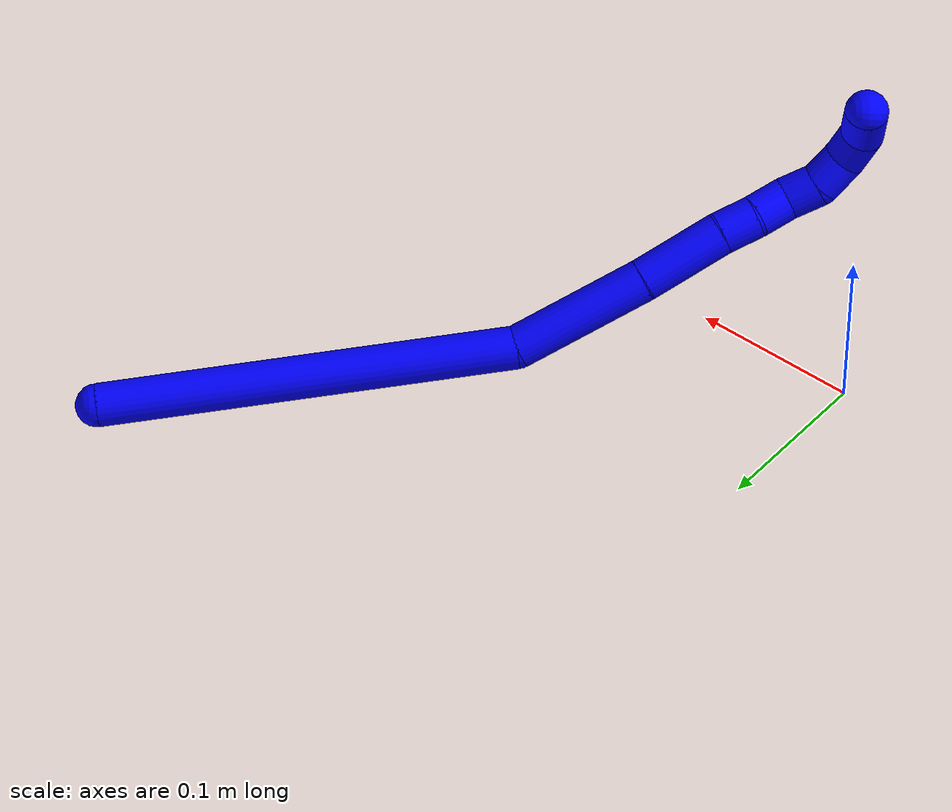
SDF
<sdf version="1.7">
 <world name="default">
  <plugin name="TubeGeneratorPlugin" filename="libtube_generator_plugin.so"/>
  <model name="photoneo_s_sensor">
   <static>1</static>
   <pose>0 0 2 1.57079 1.57079 3.14159</pose>
   <link name="link">
    <inertial><mass>0.1</mass></inertial>
    <sensor name="sensor" type="depth">
     <update_rate>30</update_rate>
     <camera>
      <horizontal_fov>1.22</horizontal_fov>
      <image><width>1920</width><height>1200</height><format>B8G8R8</format></image>
      <clip><near>0.1</near><far>4</far></clip>
      <depth_camera><output>points</output></depth_camera>
     </camera>
     <plugin name="camera_plugin" filename="libgazebo_ros_depth_camera.so">
      <baseline>0.2</baseline>
      <alwaysOn>1</alwaysOn>
      <updateRate>0.0</updateRate>
      <cameraName>camera_ir</cameraName>
      <imageTopicName>/camera/color/image_raw</imageTopicName>
      <cameraInfoTopicName>/camera/color/camera_info</cameraInfoTopicName>
      <depthImageTopicName>/camera/depth/image_raw</depthImageTopicName>
      <depthImageCameraInfoTopicName>/camera/depth/camera_info</depthImageCameraInfoTopicName>
      <pointCloudTopicName>/camera/depth/points</pointCloudTopicName>
      <frameName>fr_optical</frameName>
      <pointCloudCutoff>0.1</pointCloudCutoff>
      <pointCloudCutoffMax>2.0</pointCloudCutoffMax>
      <distortionK1>0</distortionK1>
      <distortionK2>0</distortionK2>
      <distortionK3>0</distortionK3>
      <distortionT1>0</distortionT1>
      <distortionT2>0</distortionT2>
      <CxPrime>0</CxPrime>
      <Cx>0</Cx>
      <Cy>0</Cy>
      <focalLength>0</focalLength>
      <hackBaseline>0</hackBaseline>
     </plugin>
    </sensor>
   </link>
  </model>
  <gravity>0 0 -9.8</gravity>
  <magnetic_field>6e-06 2.3e-05 -4.2e-05</magnetic_field>
  <atmosphere type="adiabatic"/>
  <physics name="default_physics" default="0" type="ode">
   <max_step_size>0.003</max_step_size>
   <real_time_factor>1</real_time_factor>
   <real_time_update_rate>1000</real_time_update_rate>
   <max_contacts>10000</max_contacts>
   <ode>
    <solver>
     <type>quick</type>
     <iters>100</iters>
     <sor>1.3</sor>
     <use_dynamic_moi_rescaling>0</use_dynamic_moi_rescaling>
    </solver>
    <constraints>
     <contact_max_correcting_vel>0</contact_max_correcting_vel>
     <contact_surface_layer>0.001</contact_surface_layer>
     <cfm>0</cfm>
     <erp>0.2</erp>
    </constraints>
   </ode>
  </physics>
  <scene><ambient>0.4 0.4 0.4 1</ambient><background>0.7 0.7 0.7 1</background><shadows>0</shadows></scene>
  <audio><device>default</device></audio>
  <spherical_coordinates>
   <surface_model>EARTH_WGS84</surface_model>
   <latitude_deg>0</latitude_deg>
   <longitude_deg>0</longitude_deg>
   <elevation>0</elevation>
   <heading_deg>0</heading_deg>
  </spherical_coordinates>
  <model name="bin">
   <static>1</static>
   <link name="bottom">
    <collision name="collision-bottom">
     <pose>0 0 -0.01 0 -0 0</pose>
     <geometry><box><size>0.8 0.6 0.02</size></box></geometry>
     <surface>
      <friction><ode><mu>100</mu><mu2>100</mu2></ode></friction>
      <contact><collide_bitmask>65535</collide_bitmask></contact>
     </surface>
    </collision>
   </link>
   <link name="west_wall">
    <collision name="collision-west_wall">
     <pose>-0.41 0 0.1 0 -0 0</pose>
     <geometry><box><size>0.02 0.6 0.2</size></box></geometry>
     <surface>
      <friction><ode><mu>100</mu><mu2>100</mu2></ode></friction>
      <contact><collide_bitmask>65535</collide_bitmask></contact>
     </surface>
    </collision>
   </link>
   <link name="east_wall">
    <collision name="collision-east_wall">
     <pose>0.41 0 0.1 0 -0 0</pose>
     <geometry><box><size>0.02 0.6 0.2</size></box></geometry>
     <surface>
      <friction><ode><mu>100</mu><mu2>100</mu2></ode></friction>
      <contact><collide_bitmask>65535</collide_bitmask></contact>
     </surface>
    </collision>
   </link>
   <link name="south_wall">
    <collision name="collision-south_wall">
     <pose>0 -0.31 0.1 0 -0 0</pose>
     <geometry><box><size>0.8 0.02 0.2</size></box></geometry>
     <surface>
      <friction><ode><mu>100</mu><mu2>100</mu2></ode></friction>
      <contact><collide_bitmask>65535</collide_bitmask></contact>
     </surface>
    </collision>
   </link>
   <link name="north_wall">
    <collision name="collision-north_wall">
     <pose>0 0.31 0.1 0 -0 0</pose>
     <geometry><box><size>0.8 0.02 0.2</size></box></geometry>
     <surface>
      <friction><ode><mu>100</mu><mu2>100</mu2></ode></friction>
      <contact><collide_bitmask>65535</collide_bitmask></contact>
     </surface>
    </collision>
   </link>
  </model>
  <model name="1">
   <static>0</static>
   <link name="1">
    <collision name="collision-cylinder-e_1_1_4">
     <pose>-0.041339 -0.02277 -0.110749 2.93881 -0.350519 -2.09861</pose>
     <geometry><cylinder><radius>0.0125</radius><length>0.240771</length></cylinder></geometry>
     <surface>
      <friction><ode><mu>1.16</mu><mu2>1.16</mu2><slip1>0</slip1><slip2>0</slip2></ode></friction>
      <contact><ode><kp>1e+06</kp><kd>1</kd><max_vel>0</max_vel><min_depth>0.001</min_depth></ode></contact>
     </surface>
    </collision>
    <visual name="visual-cylinder-e_1_1_4">
     <pose>-0.041339 -0.02277 -0.110749 2.93881 -0.350519 -2.09861</pose>
     <geometry><cylinder><radius>0.0125</radius><length>0.240771</length></cylinder></geometry>
     <material><ambient>0 0 1 1</ambient></material>
    </visual>
    <collision name="collision-cylinder-e_2_4_5">
     <pose>-0.095082 -0.066624 -0.253937 2.56527 -0.310273 -0.970994</pose>
     <geometry><cylinder><radius>0.0125</radius><length>0.081257</length></cylinder></geometry>
     <surface>
      <friction><ode><mu>1.16</mu><mu2>1.16</mu2><slip1>0</slip1><slip2>0</slip2></ode></friction>
      <contact><ode><kp>1e+06</kp><kd>1</kd><max_vel>0</max_vel><min_depth>0.001</min_depth></ode></contact>
     </surface>
    </collision>
    <visual name="visual-cylinder-e_2_4_5">
     <pose>-0.095082 -0.066624 -0.253937 2.56527 -0.310273 -0.970994</pose>
     <geometry><cylinder><radius>0.0125</radius><length>0.081257</length></cylinder></geometry>
     <material><ambient>0 0 1 1</ambient></material>
    </visual>
    <collision name="collision-cylinder-e_3_5_6">
     <pose>-0.113946 -0.102026 -0.306649 2.52665 -0.2546 -0.7663</pose>
     <geometry><cylinder><radius>0.0125</radius><length>0.051293</length></cylinder></geometry>
     <surface>
      <friction><ode><mu>1.16</mu><mu2>1.16</mu2><slip1>0</slip1><slip2>0</slip2></ode></friction>
      <contact><ode><kp>1e+06</kp><kd>1</kd><max_vel>0</max_vel><min_depth>0.001</min_depth></ode></contact>
     </surface>
    </collision>
    <visual name="visual-cylinder-e_3_5_6">
     <pose>-0.113946 -0.102026 -0.306649 2.52665 -0.2546 -0.7663</pose>
     <geometry><cylinder><radius>0.0125</radius><length>0.051293</length></cylinder></geometry>
     <material><ambient>0 0 1 1</ambient></material>
    </visual>
    <collision name="collision-cylinder-e_4_6_7">
     <pose>-0.122833 -0.12146 -0.336085 2.63244 -0.227401 -0.827045</pose>
     <geometry><cylinder><radius>0.0125</radius><length>0.021544</length></cylinder></geometry>
     <surface>
      <friction><ode><mu>1.16</mu><mu2>1.16</mu2><slip1>0</slip1><slip2>0</slip2></ode></friction>
      <contact><ode><kp>1e+06</kp><kd>1</kd><max_vel>0</max_vel><min_depth>0.001</min_depth></ode></contact>
     </surface>
    </collision>
    <visual name="visual-cylinder-e_4_6_7">
     <pose>-0.122833 -0.12146 -0.336085 2.63244 -0.227401 -0.827045</pose>
     <geometry><cylinder><radius>0.0125</radius><length>0.021544</length></cylinder></geometry>
     <material><ambient>0 0 1 1</ambient></material>
    </visual>
    <collision name="collision-cylinder-e_5_7_8">
     <pose>-0.126001 -0.132074 -0.354495 2.60511 -0.068589 -0.24835</pose>
     <geometry><cylinder><radius>0.0125</radius><length>0.021565</length></cylinder></geometry>
     <surface>
      <friction><ode><mu>1.16</mu><mu2>1.16</mu2><slip1>0</slip1><slip2>0</slip2></ode></friction>
      <contact><ode><kp>1e+06</kp><kd>1</kd><max_vel>0</max_vel><min_depth>0.001</min_depth></ode></contact>
     </surface>
    </collision>
    <visual name="visual-cylinder-e_5_7_8">
     <pose>-0.126001 -0.132074 -0.354495 2.60511 -0.068589 -0.24835</pose>
     <geometry><cylinder><radius>0.0125</radius><length>0.021565</length></cylinder></geometry>
     <material><ambient>0 0 1 1</ambient></material>
    </visual>
    <collision name="collision-cylinder-e_6_8_9">
     <pose>-0.131717 -0.142359 -0.371388 2.58239 -0.504104 -1.46223</pose>
     <geometry><cylinder><radius>0.0125</radius><length>0.020608</length></cylinder></geometry>
     <surface>
      <friction><ode><mu>1.16</mu><mu2>1.16</mu2><slip1>0</slip1><slip2>0</slip2></ode></friction>
      <contact><ode><kp>1e+06</kp><kd>1</kd><max_vel>0</max_vel><min_depth>0.001</min_depth></ode></contact>
     </surface>
    </collision>
    <visual name="visual-cylinder-e_6_8_9">
     <pose>-0.131717 -0.142359 -0.371388 2.58239 -0.504104 -1.46223</pose>
     <geometry><cylinder><radius>0.0125</radius><length>0.020608</length></cylinder></geometry>
     <material><ambient>0 0 1 1</ambient></material>
    </visual>
    <collision name="collision-cylinder-e_7_9_10">
     <pose>-0.140739 -0.155178 -0.38452 2.16982 -0.394088 -0.722821</pose>
     <geometry><cylinder><radius>0.0125</radius><length>0.021068</length></cylinder></geometry>
     <surface>
      <friction><ode><mu>1.16</mu><mu2>1.16</mu2><slip1>0</slip1><slip2>0</slip2></ode></friction>
      <contact><ode><kp>1e+06</kp><kd>1</kd><max_vel>0</max_vel><min_depth>0.001</min_depth></ode></contact>
     </surface>
    </collision>
    <visual name="visual-cylinder-e_7_9_10">
     <pose>-0.140739 -0.155178 -0.38452 2.16982 -0.394088 -0.722821</pose>
     <geometry><cylinder><radius>0.0125</radius><length>0.021068</length></cylinder></geometry>
     <material><ambient>0 0 1 1</ambient></material>
    </visual>
    <collision name="collision-cylinder-e_8_10_11">
     <pose>-0.151458 -0.170587 -0.391668 1.79259 -0.723212 -0.883678</pose>
     <geometry><cylinder><radius>0.0125</radius><length>0.020172</length></cylinder></geometry>
     <surface>
      <friction><ode><mu>1.16</mu><mu2>1.16</mu2><slip1>0</slip1><slip2>0</slip2></ode></friction>
      <contact><ode><kp>1e+06</kp><kd>1</kd><max_vel>0</max_vel><min_depth>0.001</min_depth></ode></contact>
     </surface>
    </collision>
    <visual name="visual-cylinder-e_8_10_11">
     <pose>-0.151458 -0.170587 -0.391668 1.79259 -0.723212 -0.883678</pose>
     <geometry><cylinder><radius>0.0125</radius><length>0.020172</length></cylinder></geometry>
     <material><ambient>0 0 1 1</ambient></material>
    </visual>
    <collision name="collision-cylinder-e_9_11_2">
     <pose>-0.165962 -0.184912 -0.390437 1.17617 -0.805024 -0.553221</pose>
     <geometry><cylinder><radius>0.0125</radius><length>0.021723</length></cylinder></geometry>
     <surface>
      <friction><ode><mu>1.16</mu><mu2>1.16</mu2><slip1>0</slip1><slip2>0</slip2></ode></friction>
      <contact><ode><kp>1e+06</kp><kd>1</kd><max_vel>0</max_vel><min_depth>0.001</min_depth></ode></contact>
     </surface>
    </collision>
    <visual name="visual-cylinder-e_9_11_2">
     <pose>-0.165962 -0.184912 -0.390437 1.17617 -0.805024 -0.553221</pose>
     <geometry><cylinder><radius>0.0125</radius><length>0.021723</length></cylinder></geometry>
     <material><ambient>0 0 1 1</ambient></material>
    </visual>
    <collision name="collision-sphere-2">
     <pose>-0.173792 -0.191862 -0.387543 0 -0 0</pose>
     <geometry><sphere><radius>0.0125</radius></sphere></geometry>
     <surface>
      <friction><ode><mu>1.16</mu><mu2>1.16</mu2><slip1>0</slip1><slip2>0</slip2></ode></friction>
      <contact><ode><kp>1e+06</kp><kd>1</kd><max_vel>0</max_vel><min_depth>0.001</min_depth></ode></contact>
     </surface>
    </collision>
    <visual name="visual-sphere-2">
     <pose>-0.173792 -0.191862 -0.387543 0 -0 0</pose>
     <geometry><sphere><radius>0.0125</radius></sphere></geometry>
     <material><ambient>0 0 1 1</ambient></material>
    </visual>
    <collision name="collision-sphere-11">
     <pose>-0.158133 -0.177963 -0.393331 0 -0 0</pose>
     <geometry><sphere><radius>0.0125</radius></sphere></geometry>
     <surface>
      <friction><ode><mu>1.16</mu><mu2>1.16</mu2><slip1>0</slip1><slip2>0</slip2></ode></friction>
      <contact><ode><kp>1e+06</kp><kd>1</kd><max_vel>0</max_vel><min_depth>0.001</min_depth></ode></contact>
     </surface>
    </collision>
    <visual name="visual-sphere-11">
     <pose>-0.158133 -0.177963 -0.393331 0 -0 0</pose>
     <geometry><sphere><radius>0.0125</radius></sphere></geometry>
     <material><ambient>0 0 1 1</ambient></material>
    </visual>
    <collision name="collision-sphere-10">
     <pose>-0.144783 -0.163211 -0.390005 0 -0 0</pose>
     <geometry><sphere><radius>0.0125</radius></sphere></geometry>
     <surface>
      <friction><ode><mu>1.16</mu><mu2>1.16</mu2><slip1>0</slip1><slip2>0</slip2></ode></friction>
      <contact><ode><kp>1e+06</kp><kd>1</kd><max_vel>0</max_vel><min_depth>0.001</min_depth></ode></contact>
     </surface>
    </collision>
    <visual name="visual-sphere-10">
     <pose>-0.144783 -0.163211 -0.390005 0 -0 0</pose>
     <geometry><sphere><radius>0.0125</radius></sphere></geometry>
     <material><ambient>0 0 1 1</ambient></material>
    </visual>
    <collision name="collision-sphere-9">
     <pose>-0.136694 -0.147145 -0.379036 0 -0 0</pose>
     <geometry><sphere><radius>0.0125</radius></sphere></geometry>
     <surface>
      <friction><ode><mu>1.16</mu><mu2>1.16</mu2><slip1>0</slip1><slip2>0</slip2></ode></friction>
      <contact><ode><kp>1e+06</kp><kd>1</kd><max_vel>0</max_vel><min_depth>0.001</min_depth></ode></contact>
     </surface>
    </collision>
    <visual name="visual-sphere-9">
     <pose>-0.136694 -0.147145 -0.379036 0 -0 0</pose>
     <geometry><sphere><radius>0.0125</radius></sphere></geometry>
     <material><ambient>0 0 1 1</ambient></material>
    </visual>
    <collision name="collision-sphere-4">
     <pose>-0.082677 -0.045541 -0.221498 0 -0 0</pose>
     <geometry><sphere><radius>0.0125</radius></sphere></geometry>
     <surface>
      <friction><ode><mu>1.16</mu><mu2>1.16</mu2><slip1>0</slip1><slip2>0</slip2></ode></friction>
      <contact><ode><kp>1e+06</kp><kd>1</kd><max_vel>0</max_vel><min_depth>0.001</min_depth></ode></contact>
     </surface>
    </collision>
    <visual name="visual-sphere-4">
     <pose>-0.082677 -0.045541 -0.221498 0 -0 0</pose>
     <geometry><sphere><radius>0.0125</radius></sphere></geometry>
     <material><ambient>0 0 1 1</ambient></material>
    </visual>
    <collision name="collision-sphere-1">
     <geometry><sphere><radius>0.0125</radius></sphere></geometry>
     <surface>
      <friction><ode><mu>1.16</mu><mu2>1.16</mu2><slip1>0</slip1><slip2>0</slip2></ode></friction>
      <contact><ode><kp>1e+06</kp><kd>1</kd><max_vel>0</max_vel><min_depth>0.001</min_depth></ode></contact>
     </surface>
    </collision>
    <visual name="visual-sphere-1">
     <geometry><sphere><radius>0.0125</radius></sphere></geometry>
     <material><ambient>0 0 1 1</ambient></material>
    </visual>
    <collision name="collision-sphere-8">
     <pose>-0.12674 -0.137572 -0.363741 0 -0 0</pose>
     <geometry><sphere><radius>0.0125</radius></sphere></geometry>
     <surface>
      <friction><ode><mu>1.16</mu><mu2>1.16</mu2><slip1>0</slip1><slip2>0</slip2></ode></friction>
      <contact><ode><kp>1e+06</kp><kd>1</kd><max_vel>0</max_vel><min_depth>0.001</min_depth></ode></contact>
     </surface>
    </collision>
    <visual name="visual-sphere-8">
     <pose>-0.12674 -0.137572 -0.363741 0 -0 0</pose>
     <geometry><sphere><radius>0.0125</radius></sphere></geometry>
     <material><ambient>0 0 1 1</ambient></material>
    </visual>
    <collision name="collision-sphere-5">
     <pose>-0.107486 -0.087707 -0.286376 0 -0 0</pose>
     <geometry><sphere><radius>0.0125</radius></sphere></geometry>
     <surface>
      <friction><ode><mu>1.16</mu><mu2>1.16</mu2><slip1>0</slip1><slip2>0</slip2></ode></friction>
      <contact><ode><kp>1e+06</kp><kd>1</kd><max_vel>0</max_vel><min_depth>0.001</min_depth></ode></contact>
     </surface>
    </collision>
    <visual name="visual-sphere-5">
     <pose>-0.107486 -0.087707 -0.286376 0 -0 0</pose>
     <geometry><sphere><radius>0.0125</radius></sphere></geometry>
     <material><ambient>0 0 1 1</ambient></material>
    </visual>
    <collision name="collision-sphere-6">
     <pose>-0.120405 -0.116345 -0.326922 0 -0 0</pose>
     <geometry><sphere><radius>0.0125</radius></sphere></geometry>
     <surface>
      <friction><ode><mu>1.16</mu><mu2>1.16</mu2><slip1>0</slip1><slip2>0</slip2></ode></friction>
      <contact><ode><kp>1e+06</kp><kd>1</kd><max_vel>0</max_vel><min_depth>0.001</min_depth></ode></contact>
     </surface>
    </collision>
    <visual name="visual-sphere-6">
     <pose>-0.120405 -0.116345 -0.326922 0 -0 0</pose>
     <geometry><sphere><radius>0.0125</radius></sphere></geometry>
     <material><ambient>0 0 1 1</ambient></material>
    </visual>
    <collision name="collision-sphere-7">
     <pose>-0.125262 -0.126576 -0.345249 0 -0 0</pose>
     <geometry><sphere><radius>0.0125</radius></sphere></geometry>
     <surface>
      <friction><ode><mu>1.16</mu><mu2>1.16</mu2><slip1>0</slip1><slip2>0</slip2></ode></friction>
      <contact><ode><kp>1e+06</kp><kd>1</kd><max_vel>0</max_vel><min_depth>0.001</min_depth></ode></contact>
     </surface>
    </collision>
    <visual name="visual-sphere-7">
     <pose>-0.125262 -0.126576 -0.345249 0 -0 0</pose>
     <geometry><sphere><radius>0.0125</radius></sphere></geometry>
     <material><ambient>0 0 1 1</ambient></material>
    </visual>
    <inertial>
     <pose>-0.082454 -0.07051 -0.2201 0 -0 0</pose>
     <mass>0.5</mass>
     <inertia>
      <ixx>-0.001531</ixx>
      <ixy>0</ixy>
      <ixz>0</ixz>
      <iyy>-0.000393</iyy>
      <iyz>0</iyz>
      <izz>0.000654</izz>
     </inertia>
    </inertial>
   </link>
   <pose>0.315201 0.287797 0.012252 -1.2553 0.567719 -0.428451</pose>
  </model>
 </world>
</sdf>
